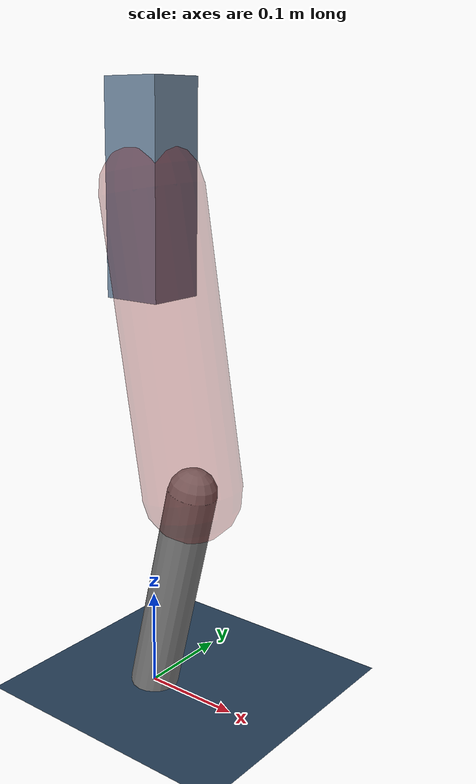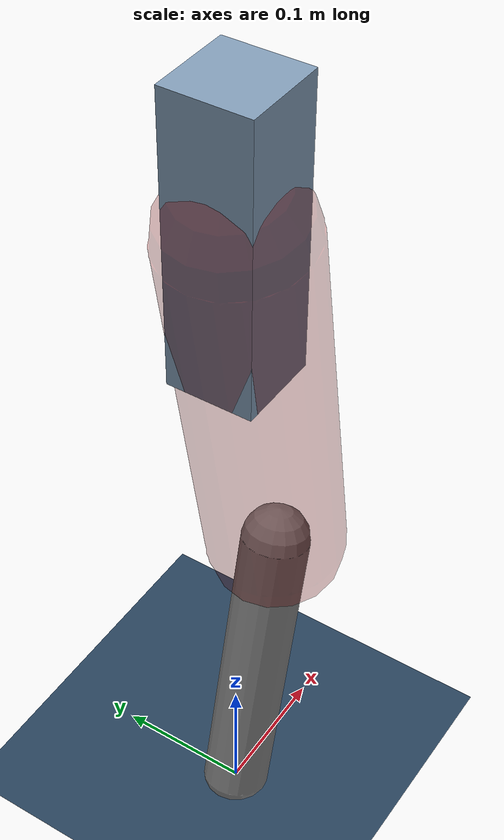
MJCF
<mujoco model="Hopper2D">
	<compiler inertiafromgeom="true" angle="radian" />
	<option timestep="0.001" integrator="implicit" cone="elliptic" solver="Newton" tolerance="1e-10" />

	<default>
		<geom contype="1" conaffinity="1" condim="3" friction="2 0.005 0.0001" solref="0.005 1" />
		<joint limited="true" damping="0.1" />
	</default>

	<asset>
		<texture name="skybox" type="skybox" builtin="gradient" rgb1=".4 .6 .8" rgb2="0 0 0" width="800" height="800" />
		<texture name="grid" type="2d" builtin="checker" rgb1=".1 .2 .3" rgb2=".2 .3 .4" width="300" height="300" mark="edge" markrgb=".2 .3 .4" />
		<material name="ground" texture="grid" texrepeat="1 1" texuniform="true" reflectance="0.1" />
		<material name="leg" rgba="0.5 0.6 0.7 1" />
	</asset>

	<worldbody>

		<geom name="floor" type="plane" size="5 5 0.25" material="ground" />

		<light directional="false" diffuse="0.8 0.8 0.8" specular="0.3 0.3 0.3" pos="0 0 2" dir="0 0 -1" />
		<light mode="targetbodycom" target="base" directional="false" diffuse="0.8 0.8 0.8" specular="0.3 0.3 0.3" pos="0 0 2" dir="0 0 -1" />

		<camera name="fixed" pos="0 -2 1" xyaxes="1 0 0 0 0 1" />
		<camera name="tracking" mode="trackcom" pos="0 -3 1" />

		<body name="root" pos="0 0 0.5137561757068576">
			<joint name="slide_x" type="slide" axis="1 0 0" range="-100 100" />
			<joint name="slide_z" type="slide" axis="0 0 1" range="0 10" />

			<body name="base" pos="0 0 0">
				<geom name="torso" type="box" size="0.03 0.03 0.1" mass="2.1100000000000003" material="leg" />

				<body name="link1" pos="0 0 0" euler="0 1.396808608293972 0">
					<joint type="hinge" axis="0 -1 0" pos="0 0 0" name="hinge1" limited="true" range="-3.14 3.14" stiffness="0" damping="0.1" />
					<geom name="thigh" type="capsule" fromto="0 0 0 0.29214925109234013 0 0" size="0.05" rgba="0.5 0 0 0.3" mass="0.9676029779493184" />

					<body name="link2" pos="0.29214925109234013 0 0" euler="0 0.39412409415692284 0">
						<joint type="hinge" axis="0 -1 0" pos="0 0 0" name="hinge2" limited="true" range="-3.14 3.14" stiffness="0" damping="0.1" />
						<geom name="shank" type="capsule" fromto="0 0 0 0.23160692461451746 0 0" size="0.025" mass="0.4272855396916139" />

					</body>
				</body>
			</body>
		</body>
	</worldbody>

	<actuator>
		<motor name="torque1" joint="hinge1" ctrlrange="-48.042615994077536 48.042615994077536" ctrllimited="true" gear="1" />
		<motor name="torque2" joint="hinge2" ctrlrange="-78.63488543052873 78.63488543052873" ctrllimited="true" gear="1" />
	</actuator>
</mujoco>
